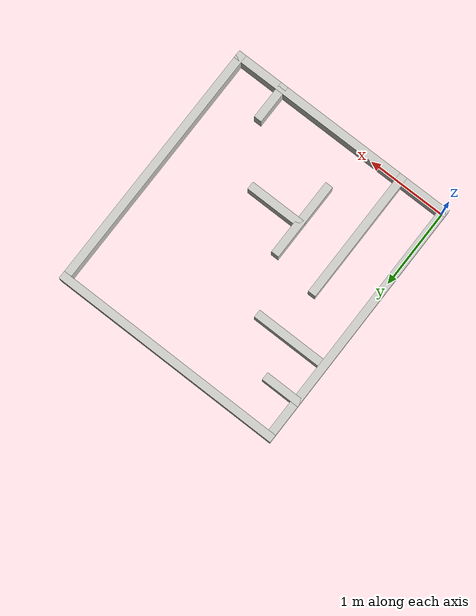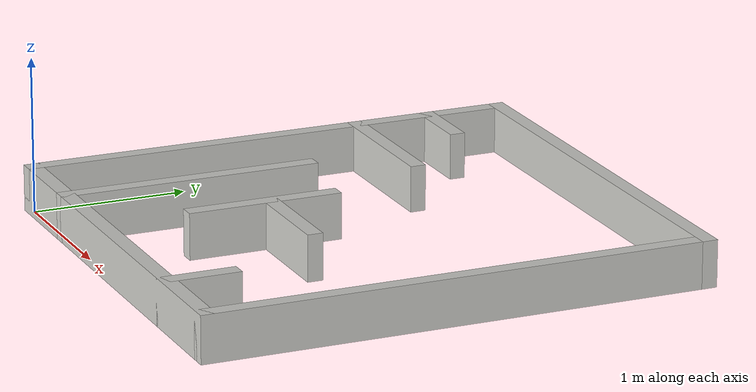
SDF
<?xml version='1.0'?>
<sdf version='1.6'>
  <model name='qmp_world'>
    <pose frame=''>1.45 1.6 0 0 -0 0</pose>
    <link name='Wall_12'>
      <collision name='Wall_12_Collision'>
        <geometry>
          <box>
            <size>3 0.1 0.3</size>
          </box>
        </geometry>
        <pose frame=''>0 0 0.15 0 -0 0</pose>
      </collision>
      <visual name='Wall_12_Visual'>
        <pose frame=''>0 0 0.15 0 -0 0</pose>
        <geometry>
          <box>
            <size>3 0.1 0.3</size>
          </box>
        </geometry>
        <material>
          <script>
            <uri>file://media/materials/scripts/gazebo.material</uri>
            <name>Gazebo/CeilingTiled</name>
          </script>
          <ambient>0.435294 0.796078 0.67451 1</ambient>
        </material>
        <meta>
          <layer>0</layer>
        </meta>
      </visual>
      <pose frame=''>0 1.6 0 0 -0 0</pose>
    </link>
    <link name='Wall_16'>
      <collision name='Wall_16_Collision'>
        <geometry>
          <box>
            <size>3.2 0.1 0.3</size>
          </box>
        </geometry>
        <pose frame=''>0 0 0.15 0 -0 0</pose>
      </collision>
      <visual name='Wall_16_Visual'>
        <pose frame=''>0 0 0.15 0 -0 0</pose>
        <geometry>
          <box>
            <size>3.2 0.1 0.3</size>
          </box>
        </geometry>
        <material>
          <script>
            <uri>file://media/materials/scripts/gazebo.material</uri>
            <name>Gazebo/CeilingTiled</name>
          </script>
          <ambient>0.435294 0.796078 0.67451 1</ambient>
        </material>
        <meta>
          <layer>0</layer>
        </meta>
      </visual>
      <pose frame=''>-1.45 -0.05 0 0 -0 1.5708</pose>
    </link>
    <link name='Wall_18'>
      <collision name='Wall_18_Collision'>
        <geometry>
          <box>
            <size>3.2 0.1 0.3</size>
          </box>
        </geometry>
        <pose frame=''>0 0 0.15 0 -0 0</pose>
      </collision>
      <visual name='Wall_18_Visual'>
        <pose frame=''>0 0 0.15 0 -0 0</pose>
        <geometry>
          <box>
            <size>3.2 0.1 0.3</size>
          </box>
        </geometry>
        <material>
          <script>
            <uri>file://media/materials/scripts/gazebo.material</uri>
            <name>Gazebo/CeilingTiled</name>
          </script>
          <ambient>0.435294 0.796078 0.67451 1</ambient>
        </material>
        <meta>
          <layer>0</layer>
        </meta>
      </visual>
      <pose frame=''>1.45 -0.05 0 0 -0 1.5708</pose>
    </link>
    <link name='Wall_21'>
      <collision name='Wall_21_Collision'>
        <geometry>
          <box>
            <size>1.7 0.1 0.3</size>
          </box>
        </geometry>
        <pose frame=''>0 0 0.15 0 -0 0</pose>
      </collision>
      <visual name='Wall_21_Visual'>
        <pose frame=''>0 0 0.15 0 -0 0</pose>
        <geometry>
          <box>
            <size>1.7 0.1 0.3</size>
          </box>
        </geometry>
        <material>
          <script>
            <uri>file://media/materials/scripts/gazebo.material</uri>
            <name>Gazebo/CeilingTiled</name>
          </script>
          <ambient>0.760784 0.662745 0.627451 1</ambient>
        </material>
        <meta>
          <layer>0</layer>
        </meta>
      </visual>
      <pose frame=''>-0.85 -0.8 0 0 -0 1.5708</pose>
    </link>
    <link name='Wall_23'>
      <collision name='Wall_23_Collision'>
        <geometry>
          <box>
            <size>1 0.1 0.3</size>
          </box>
        </geometry>
        <pose frame=''>0 0 0.15 0 -0 0</pose>
      </collision>
      <visual name='Wall_23_Visual'>
        <pose frame=''>0 0 0.15 0 -0 0</pose>
        <geometry>
          <box>
            <size>1 0.1 0.3</size>
          </box>
        </geometry>
        <material>
          <script>
            <uri>file://media/materials/scripts/gazebo.material</uri>
            <name>Gazebo/CeilingTiled</name>
          </script>
          <ambient>0.760784 0.662745 0.627451 1</ambient>
        </material>
        <meta>
          <layer>0</layer>
        </meta>
      </visual>
      <pose frame=''>-1 0.6 0 0 -0 0</pose>
    </link>
    <link name='Wall_25'>
      <collision name='Wall_25_Collision'>
        <geometry>
          <box>
            <size>1 0.1 0.3</size>
          </box>
        </geometry>
        <pose frame=''>0 0 0.15 0 -0 0</pose>
      </collision>
      <visual name='Wall_25_Visual'>
        <pose frame=''>0 0 0.15 0 -0 0</pose>
        <geometry>
          <box>
            <size>1 0.1 0.3</size>
          </box>
        </geometry>
        <material>
          <script>
            <uri>file://media/materials/scripts/gazebo.material</uri>
            <name>Gazebo/CeilingTiled</name>
          </script>
          <ambient>0.760784 0.662745 0.627451 1</ambient>
        </material>
        <meta>
          <layer>0</layer>
        </meta>
      </visual>
      <pose frame=''>-0.25 -0.55 0 0 -0 1.5708</pose>
    </link>
    <link name='Wall_27'>
      <collision name='Wall_27_Collision'>
        <geometry>
          <box>
            <size>0.75 0.1 0.3</size>
          </box>
        </geometry>
        <pose frame=''>0 0 0.15 0 -0 0</pose>
      </collision>
      <visual name='Wall_27_Visual'>
        <pose frame=''>0 0 0.15 0 -0 0</pose>
        <geometry>
          <box>
            <size>0.75 0.1 0.3</size>
          </box>
        </geometry>
        <material>
          <script>
            <uri>file://media/materials/scripts/gazebo.material</uri>
            <name>Gazebo/CeilingTiled</name>
          </script>
          <ambient>0.760784 0.662745 0.627451 1</ambient>
        </material>
        <meta>
          <layer>0</layer>
        </meta>
      </visual>
      <pose frame=''>0.075 -0.5 0 0 -0 0</pose>
    </link>
    <link name='Wall_29'>
      <collision name='Wall_29_Collision'>
        <geometry>
          <box>
            <size>0.5 0.1 0.3</size>
          </box>
        </geometry>
        <pose frame=''>0 0 0.15 0 -0 0</pose>
      </collision>
      <visual name='Wall_29_Visual'>
        <pose frame=''>0 0 0.15 0 -0 0</pose>
        <geometry>
          <box>
            <size>0.5 0.1 0.3</size>
          </box>
        </geometry>
        <material>
          <script>
            <uri>file://media/materials/scripts/gazebo.material</uri>
            <name>Gazebo/CeilingTiled</name>
          </script>
          <ambient>0.760784 0.662745 0.627451 1</ambient>
        </material>
        <meta>
          <layer>0</layer>
        </meta>
      </visual>
      <pose frame=''>-1.25 1.1 0 0 -0 3.14159</pose>
    </link>
    <link name='Wall_31'>
      <collision name='Wall_31_Collision'>
        <geometry>
          <box>
            <size>0.5 0.1 0.3</size>
          </box>
        </geometry>
        <pose frame=''>0 0 0.15 0 -0 0</pose>
      </collision>
      <visual name='Wall_31_Visual'>
        <pose frame=''>0 0 0.15 0 -0 0</pose>
        <geometry>
          <box>
            <size>0.5 0.1 0.3</size>
          </box>
        </geometry>
        <material>
          <script>
            <uri>file://media/materials/scripts/gazebo.material</uri>
            <name>Gazebo/CeilingTiled</name>
          </script>
          <ambient>0.760784 0.662745 0.627451 1</ambient>
        </material>
        <meta>
          <layer>0</layer>
        </meta>
      </visual>
      <pose frame=''>0.85 -1.4 0 0 -0 1.5708</pose>
    </link>
    <link name='Wall_9'>
      <collision name='Wall_9_Collision'>
        <geometry>
          <box>
            <size>3 0.1 0.3</size>
          </box>
        </geometry>
        <pose frame=''>0 0 0.15 0 -0 0</pose>
      </collision>
      <visual name='Wall_9_Visual'>
        <pose frame=''>0 0 0.15 0 -0 0</pose>
        <geometry>
          <box>
            <size>3 0.1 0.3</size>
          </box>
        </geometry>
        <material>
          <script>
            <uri>file://media/materials/scripts/gazebo.material</uri>
            <name>Gazebo/CeilingTiled</name>
          </script>
          <ambient>0.435294 0.796078 0.67451 1</ambient>
        </material>
        <meta>
          <layer>0</layer>
        </meta>
      </visual>
      <pose frame=''>0 -1.6 0 0 -0 0</pose>
    </link>
    <static>1</static>
  </model>
</sdf>
